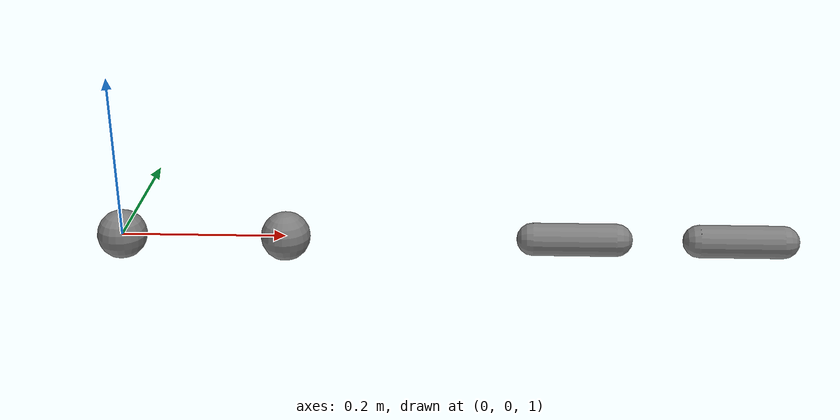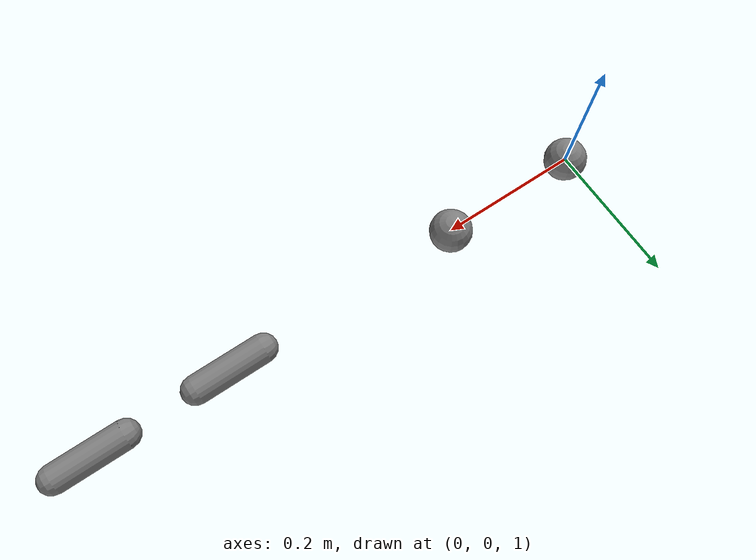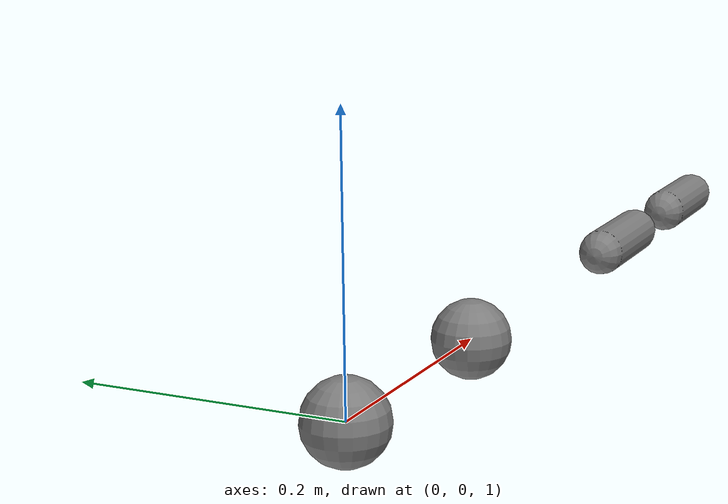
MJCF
<mujoco model="equality_constraints">
  <compiler angle="radian"/>
  <worldbody>
    <body name="ea" pos="0 0 1">
      <freejoint/>
      <geom name="ea_g" type="sphere" size="0.03"/>
      <site name="ea_s" pos="0 0 0" size="0.01"/>
    </body>
    <body name="eb" pos="0.2 0 1">
      <freejoint/>
      <geom name="eb_g" type="sphere" size="0.03"/>
      <site name="eb_s" pos="0 0 0" size="0.01"/>
    </body>
    <body name="ja" pos="0.5 0 1">
      <joint name="jja" type="hinge" axis="0 0 1"/>
      <geom name="ja_g" type="capsule" size="0.02" fromto="0 0 0 0.1 0 0"/>
    </body>
    <body name="jb" pos="0.7 0 1">
      <joint name="jjb" type="hinge" axis="0 0 1"/>
      <geom name="jb_g" type="capsule" size="0.02" fromto="0 0 0 0.1 0 0"/>
    </body>
  </worldbody>
  <tendon>
    <fixed name="t1"><joint joint="jja" coef="1"/></fixed>
    <fixed name="t2"><joint joint="jjb" coef="1"/></fixed>
  </tendon>
  <equality>
    <connect name="eq_connect" body1="ea" body2="eb" anchor="0 0 0"/>
    <weld name="eq_weld" body1="ea" body2="eb"/>
    <joint name="eq_joint" joint1="jja" joint2="jjb" polycoef="0 1 0 0 0"/>
    <tendon name="eq_tendon" tendon1="t1" tendon2="t2"/>
  </equality>
</mujoco>
